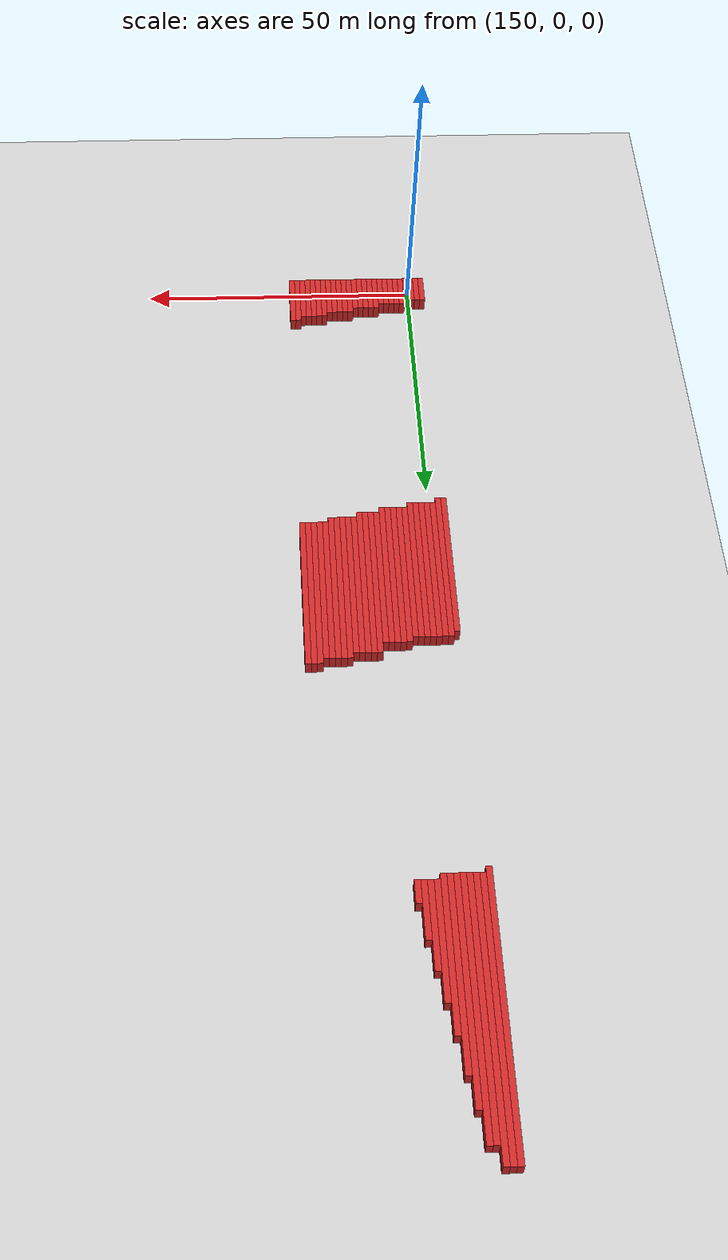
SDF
<sdf version="1.4">
 <world name="1_wall">
  <model name="ground_plane">
   <static>1</static>
   <link name="link">
    <collision name="collision">
     <geometry><plane><normal>0 0 1</normal><size>1000 1000</size></plane></geometry>
     <surface><friction><ode><mu>100</mu><mu2>50</mu2></ode></friction></surface>
    </collision>
    <visual name="visual">
     <cast_shadows>0</cast_shadows>
     <geometry><plane><normal>0 0 1</normal><size>10000 10000</size></plane></geometry>
     <material>
      <script><uri>file://media/materials/scripts/gazebo.material</uri><name>Gazebo/Grey</name></script>
     </material>
    </visual>
    <velocity_decay><linear>0</linear><angular>0</angular></velocity_decay>
   </link>
  </model>
  <model name="Wall_256">
   <static>1</static>
   <link name="Wall_256">
    <collision name="Wall_Collision_256">
     <geometry><box><size>46.0 1.0 2.5</size></box></geometry>
     <pose>0 0 1.25 0 -0 0</pose>
    </collision>
    <visual name="Wall_Visual_256">
     <pose>0 0 1.25 0 -0 0</pose>
     <geometry><box><size>46.0 1.0 2.5</size></box></geometry>
     <material>
      <script><uri>file://media/materials/scripts/gazebo.material</uri><name>Gazebo/Red</name></script>
     </material>
    </visual>
    <velocity_decay><linear>0</linear><angular>0</angular></velocity_decay>
    <pose>146.5 150.0 0 0 0 1.5707963267948966</pose>
   </link>
  </model>
  <model name="Wall_257">
   <static>1</static>
   <link name="Wall_257">
    <collision name="Wall_Collision_257">
     <geometry><box><size>6.0 1.0 2.5</size></box></geometry>
     <pose>0 0 1.25 0 -0 0</pose>
    </collision>
    <visual name="Wall_Visual_257">
     <pose>0 0 1.25 0 -0 0</pose>
     <geometry><box><size>6.0 1.0 2.5</size></box></geometry>
     <material>
      <script><uri>file://media/materials/scripts/gazebo.material</uri><name>Gazebo/Red</name></script>
     </material>
    </visual>
    <velocity_decay><linear>0</linear><angular>0</angular></velocity_decay>
    <pose>147.5 1.0 0 0 0 1.5707963267948966</pose>
   </link>
  </model>
  <model name="Wall_258">
   <static>1</static>
   <link name="Wall_258">
    <collision name="Wall_Collision_258">
     <geometry><box><size>29.0 1.0 2.5</size></box></geometry>
     <pose>0 0 1.25 0 -0 0</pose>
    </collision>
    <visual name="Wall_Visual_258">
     <pose>0 0 1.25 0 -0 0</pose>
     <geometry><box><size>29.0 1.0 2.5</size></box></geometry>
     <material>
      <script><uri>file://media/materials/scripts/gazebo.material</uri><name>Gazebo/Red</name></script>
     </material>
    </visual>
    <velocity_decay><linear>0</linear><angular>0</angular></velocity_decay>
    <pose>147.5 68.5 0 0 0 1.5707963267948966</pose>
   </link>
  </model>
  <model name="Wall_259">
   <static>1</static>
   <link name="Wall_259">
    <collision name="Wall_Collision_259">
     <geometry><box><size>45.0 1.0 2.5</size></box></geometry>
     <pose>0 0 1.25 0 -0 0</pose>
    </collision>
    <visual name="Wall_Visual_259">
     <pose>0 0 1.25 0 -0 0</pose>
     <geometry><box><size>45.0 1.0 2.5</size></box></geometry>
     <material>
      <script><uri>file://media/materials/scripts/gazebo.material</uri><name>Gazebo/Red</name></script>
     </material>
    </visual>
    <velocity_decay><linear>0</linear><angular>0</angular></velocity_decay>
    <pose>147.5 150.5 0 0 0 1.5707963267948966</pose>
   </link>
  </model>
  <model name="Wall_260">
   <static>1</static>
   <link name="Wall_260">
    <collision name="Wall_Collision_260">
     <geometry><box><size>6.0 1.0 2.5</size></box></geometry>
     <pose>0 0 1.25 0 -0 0</pose>
    </collision>
    <visual name="Wall_Visual_260">
     <pose>0 0 1.25 0 -0 0</pose>
     <geometry><box><size>6.0 1.0 2.5</size></box></geometry>
     <material>
      <script><uri>file://media/materials/scripts/gazebo.material</uri><name>Gazebo/Red</name></script>
     </material>
    </visual>
    <velocity_decay><linear>0</linear><angular>0</angular></velocity_decay>
    <pose>148.5 1.0 0 0 0 1.5707963267948966</pose>
   </link>
  </model>
  <model name="Wall_261">
   <static>1</static>
   <link name="Wall_261">
    <collision name="Wall_Collision_261">
     <geometry><box><size>30.0 1.0 2.5</size></box></geometry>
     <pose>0 0 1.25 0 -0 0</pose>
    </collision>
    <visual name="Wall_Visual_261">
     <pose>0 0 1.25 0 -0 0</pose>
     <geometry><box><size>30.0 1.0 2.5</size></box></geometry>
     <material>
      <script><uri>file://media/materials/scripts/gazebo.material</uri><name>Gazebo/Red</name></script>
     </material>
    </visual>
    <velocity_decay><linear>0</linear><angular>0</angular></velocity_decay>
    <pose>148.5 69.0 0 0 0 1.5707963267948966</pose>
   </link>
  </model>
  <model name="Wall_262">
   <static>1</static>
   <link name="Wall_262">
    <collision name="Wall_Collision_262">
     <geometry><box><size>45.0 1.0 2.5</size></box></geometry>
     <pose>0 0 1.25 0 -0 0</pose>
    </collision>
    <visual name="Wall_Visual_262">
     <pose>0 0 1.25 0 -0 0</pose>
     <geometry><box><size>45.0 1.0 2.5</size></box></geometry>
     <material>
      <script><uri>file://media/materials/scripts/gazebo.material</uri><name>Gazebo/Red</name></script>
     </material>
    </visual>
    <velocity_decay><linear>0</linear><angular>0</angular></velocity_decay>
    <pose>148.5 150.5 0 0 0 1.5707963267948966</pose>
   </link>
  </model>
  <model name="Wall_263">
   <static>1</static>
   <link name="Wall_263">
    <collision name="Wall_Collision_263">
     <geometry><box><size>6.0 1.0 2.5</size></box></geometry>
     <pose>0 0 1.25 0 -0 0</pose>
    </collision>
    <visual name="Wall_Visual_263">
     <pose>0 0 1.25 0 -0 0</pose>
     <geometry><box><size>6.0 1.0 2.5</size></box></geometry>
     <material>
      <script><uri>file://media/materials/scripts/gazebo.material</uri><name>Gazebo/Red</name></script>
     </material>
    </visual>
    <velocity_decay><linear>0</linear><angular>0</angular></velocity_decay>
    <pose>149.5 1.0 0 0 0 1.5707963267948966</pose>
   </link>
  </model>
  <model name="Wall_264">
   <static>1</static>
   <link name="Wall_264">
    <collision name="Wall_Collision_264">
     <geometry><box><size>29.0 1.0 2.5</size></box></geometry>
     <pose>0 0 1.25 0 -0 0</pose>
    </collision>
    <visual name="Wall_Visual_264">
     <pose>0 0 1.25 0 -0 0</pose>
     <geometry><box><size>29.0 1.0 2.5</size></box></geometry>
     <material>
      <script><uri>file://media/materials/scripts/gazebo.material</uri><name>Gazebo/Red</name></script>
     </material>
    </visual>
    <velocity_decay><linear>0</linear><angular>0</angular></velocity_decay>
    <pose>149.5 69.5 0 0 0 1.5707963267948966</pose>
   </link>
  </model>
  <model name="Wall_265">
   <static>1</static>
   <link name="Wall_265">
    <collision name="Wall_Collision_265">
     <geometry><box><size>42.0 1.0 2.5</size></box></geometry>
     <pose>0 0 1.25 0 -0 0</pose>
    </collision>
    <visual name="Wall_Visual_265">
     <pose>0 0 1.25 0 -0 0</pose>
     <geometry><box><size>42.0 1.0 2.5</size></box></geometry>
     <material>
      <script><uri>file://media/materials/scripts/gazebo.material</uri><name>Gazebo/Red</name></script>
     </material>
    </visual>
    <velocity_decay><linear>0</linear><angular>0</angular></velocity_decay>
    <pose>149.5 149.0 0 0 0 1.5707963267948966</pose>
   </link>
  </model>
  <model name="Wall_266">
   <static>1</static>
   <link name="Wall_266">
    <collision name="Wall_Collision_266">
     <geometry><box><size>6.0 1.0 2.5</size></box></geometry>
     <pose>0 0 1.25 0 -0 0</pose>
    </collision>
    <visual name="Wall_Visual_266">
     <pose>0 0 1.25 0 -0 0</pose>
     <geometry><box><size>6.0 1.0 2.5</size></box></geometry>
     <material>
      <script><uri>file://media/materials/scripts/gazebo.material</uri><name>Gazebo/Red</name></script>
     </material>
    </visual>
    <velocity_decay><linear>0</linear><angular>0</angular></velocity_decay>
    <pose>150.5 1.0 0 0 0 1.5707963267948966</pose>
   </link>
  </model>
  <model name="Wall_267">
   <static>1</static>
   <link name="Wall_267">
    <collision name="Wall_Collision_267">
     <geometry><box><size>29.0 1.0 2.5</size></box></geometry>
     <pose>0 0 1.25 0 -0 0</pose>
    </collision>
    <visual name="Wall_Visual_267">
     <pose>0 0 1.25 0 -0 0</pose>
     <geometry><box><size>29.0 1.0 2.5</size></box></geometry>
     <material>
      <script><uri>file://media/materials/scripts/gazebo.material</uri><name>Gazebo/Red</name></script>
     </material>
    </visual>
    <velocity_decay><linear>0</linear><angular>0</angular></velocity_decay>
    <pose>150.5 69.5 0 0 0 1.5707963267948966</pose>
   </link>
  </model>
  <model name="Wall_268">
   <static>1</static>
   <link name="Wall_268">
    <collision name="Wall_Collision_268">
     <geometry><box><size>42.0 1.0 2.5</size></box></geometry>
     <pose>0 0 1.25 0 -0 0</pose>
    </collision>
    <visual name="Wall_Visual_268">
     <pose>0 0 1.25 0 -0 0</pose>
     <geometry><box><size>42.0 1.0 2.5</size></box></geometry>
     <material>
      <script><uri>file://media/materials/scripts/gazebo.material</uri><name>Gazebo/Red</name></script>
     </material>
    </visual>
    <velocity_decay><linear>0</linear><angular>0</angular></velocity_decay>
    <pose>150.5 149.0 0 0 0 1.5707963267948966</pose>
   </link>
  </model>
  <model name="Wall_269">
   <static>1</static>
   <link name="Wall_269">
    <collision name="Wall_Collision_269">
     <geometry><box><size>7.0 1.0 2.5</size></box></geometry>
     <pose>0 0 1.25 0 -0 0</pose>
    </collision>
    <visual name="Wall_Visual_269">
     <pose>0 0 1.25 0 -0 0</pose>
     <geometry><box><size>7.0 1.0 2.5</size></box></geometry>
     <material>
      <script><uri>file://media/materials/scripts/gazebo.material</uri><name>Gazebo/Red</name></script>
     </material>
    </visual>
    <velocity_decay><linear>0</linear><angular>0</angular></velocity_decay>
    <pose>151.5 1.5 0 0 0 1.5707963267948966</pose>
   </link>
  </model>
  <model name="Wall_270">
   <static>1</static>
   <link name="Wall_270">
    <collision name="Wall_Collision_270">
     <geometry><box><size>29.0 1.0 2.5</size></box></geometry>
     <pose>0 0 1.25 0 -0 0</pose>
    </collision>
    <visual name="Wall_Visual_270">
     <pose>0 0 1.25 0 -0 0</pose>
     <geometry><box><size>29.0 1.0 2.5</size></box></geometry>
     <material>
      <script><uri>file://media/materials/scripts/gazebo.material</uri><name>Gazebo/Red</name></script>
     </material>
    </visual>
    <velocity_decay><linear>0</linear><angular>0</angular></velocity_decay>
    <pose>151.5 69.5 0 0 0 1.5707963267948966</pose>
   </link>
  </model>
  <model name="Wall_271">
   <static>1</static>
   <link name="Wall_271">
    <collision name="Wall_Collision_271">
     <geometry><box><size>37.0 1.0 2.5</size></box></geometry>
     <pose>0 0 1.25 0 -0 0</pose>
    </collision>
    <visual name="Wall_Visual_271">
     <pose>0 0 1.25 0 -0 0</pose>
     <geometry><box><size>37.0 1.0 2.5</size></box></geometry>
     <material>
      <script><uri>file://media/materials/scripts/gazebo.material</uri><name>Gazebo/Red</name></script>
     </material>
    </visual>
    <velocity_decay><linear>0</linear><angular>0</angular></velocity_decay>
    <pose>151.5 146.5 0 0 0 1.5707963267948966</pose>
   </link>
  </model>
  <model name="Wall_272">
   <static>1</static>
   <link name="Wall_272">
    <collision name="Wall_Collision_272">
     <geometry><box><size>7.0 1.0 2.5</size></box></geometry>
     <pose>0 0 1.25 0 -0 0</pose>
    </collision>
    <visual name="Wall_Visual_272">
     <pose>0 0 1.25 0 -0 0</pose>
     <geometry><box><size>7.0 1.0 2.5</size></box></geometry>
     <material>
      <script><uri>file://media/materials/scripts/gazebo.material</uri><name>Gazebo/Red</name></script>
     </material>
    </visual>
    <velocity_decay><linear>0</linear><angular>0</angular></velocity_decay>
    <pose>152.5 1.5 0 0 0 1.5707963267948966</pose>
   </link>
  </model>
  <model name="Wall_273">
   <static>1</static>
   <link name="Wall_273">
    <collision name="Wall_Collision_273">
     <geometry><box><size>29.0 1.0 2.5</size></box></geometry>
     <pose>0 0 1.25 0 -0 0</pose>
    </collision>
    <visual name="Wall_Visual_273">
     <pose>0 0 1.25 0 -0 0</pose>
     <geometry><box><size>29.0 1.0 2.5</size></box></geometry>
     <material>
      <script><uri>file://media/materials/scripts/gazebo.material</uri><name>Gazebo/Red</name></script>
     </material>
    </visual>
    <velocity_decay><linear>0</linear><angular>0</angular></velocity_decay>
    <pose>152.5 69.5 0 0 0 1.5707963267948966</pose>
   </link>
  </model>
  <model name="Wall_274">
   <static>1</static>
   <link name="Wall_274">
    <collision name="Wall_Collision_274">
     <geometry><box><size>32.0 1.0 2.5</size></box></geometry>
     <pose>0 0 1.25 0 -0 0</pose>
    </collision>
    <visual name="Wall_Visual_274">
     <pose>0 0 1.25 0 -0 0</pose>
     <geometry><box><size>32.0 1.0 2.5</size></box></geometry>
     <material>
      <script><uri>file://media/materials/scripts/gazebo.material</uri><name>Gazebo/Red</name></script>
     </material>
    </visual>
    <velocity_decay><linear>0</linear><angular>0</angular></velocity_decay>
    <pose>152.5 144.0 0 0 0 1.5707963267948966</pose>
   </link>
  </model>
  <model name="Wall_275">
   <static>1</static>
   <link name="Wall_275">
    <collision name="Wall_Collision_275">
     <geometry><box><size>7.0 1.0 2.5</size></box></geometry>
     <pose>0 0 1.25 0 -0 0</pose>
    </collision>
    <visual name="Wall_Visual_275">
     <pose>0 0 1.25 0 -0 0</pose>
     <geometry><box><size>7.0 1.0 2.5</size></box></geometry>
     <material>
      <script><uri>file://media/materials/scripts/gazebo.material</uri><name>Gazebo/Red</name></script>
     </material>
    </visual>
    <velocity_decay><linear>0</linear><angular>0</angular></velocity_decay>
    <pose>153.5 1.5 0 0 0 1.5707963267948966</pose>
   </link>
  </model>
  <model name="Wall_276">
   <static>1</static>
   <link name="Wall_276">
    <collision name="Wall_Collision_276">
     <geometry><box><size>29.0 1.0 2.5</size></box></geometry>
     <pose>0 0 1.25 0 -0 0</pose>
    </collision>
    <visual name="Wall_Visual_276">
     <pose>0 0 1.25 0 -0 0</pose>
     <geometry><box><size>29.0 1.0 2.5</size></box></geometry>
     <material>
      <script><uri>file://media/materials/scripts/gazebo.material</uri><name>Gazebo/Red</name></script>
     </material>
    </visual>
    <velocity_decay><linear>0</linear><angular>0</angular></velocity_decay>
    <pose>153.5 69.5 0 0 0 1.5707963267948966</pose>
   </link>
  </model>
  <model name="Wall_277">
   <static>1</static>
   <link name="Wall_277">
    <collision name="Wall_Collision_277">
     <geometry><box><size>26.0 1.0 2.5</size></box></geometry>
     <pose>0 0 1.25 0 -0 0</pose>
    </collision>
    <visual name="Wall_Visual_277">
     <pose>0 0 1.25 0 -0 0</pose>
     <geometry><box><size>26.0 1.0 2.5</size></box></geometry>
     <material>
      <script><uri>file://media/materials/scripts/gazebo.material</uri><name>Gazebo/Red</name></script>
     </material>
    </visual>
    <velocity_decay><linear>0</linear><angular>0</angular></velocity_decay>
    <pose>153.5 141.0 0 0 0 1.5707963267948966</pose>
   </link>
  </model>
  <model name="Wall_278">
   <static>1</static>
   <link name="Wall_278">
    <collision name="Wall_Collision_278">
     <geometry><box><size>7.0 1.0 2.5</size></box></geometry>
     <pose>0 0 1.25 0 -0 0</pose>
    </collision>
    <visual name="Wall_Visual_278">
     <pose>0 0 1.25 0 -0 0</pose>
     <geometry><box><size>7.0 1.0 2.5</size></box></geometry>
     <material>
      <script><uri>file://media/materials/scripts/gazebo.material</uri><name>Gazebo/Red</name></script>
     </material>
    </visual>
    <velocity_decay><linear>0</linear><angular>0</angular></velocity_decay>
    <pose>154.5 1.5 0 0 0 1.5707963267948966</pose>
   </link>
  </model>
  <model name="Wall_279">
   <static>1</static>
   <link name="Wall_279">
    <collision name="Wall_Collision_279">
     <geometry><box><size>28.0 1.0 2.5</size></box></geometry>
     <pose>0 0 1.25 0 -0 0</pose>
    </collision>
    <visual name="Wall_Visual_279">
     <pose>0 0 1.25 0 -0 0</pose>
     <geometry><box><size>28.0 1.0 2.5</size></box></geometry>
     <material>
      <script><uri>file://media/materials/scripts/gazebo.material</uri><name>Gazebo/Red</name></script>
     </material>
    </visual>
    <velocity_decay><linear>0</linear><angular>0</angular></velocity_decay>
    <pose>154.5 70.0 0 0 0 1.5707963267948966</pose>
   </link>
  </model>
  <model name="Wall_280">
   <static>1</static>
   <link name="Wall_280">
    <collision name="Wall_Collision_280">
     <geometry><box><size>20.0 1.0 2.5</size></box></geometry>
     <pose>0 0 1.25 0 -0 0</pose>
    </collision>
    <visual name="Wall_Visual_280">
     <pose>0 0 1.25 0 -0 0</pose>
     <geometry><box><size>20.0 1.0 2.5</size></box></geometry>
     <material>
      <script><uri>file://media/materials/scripts/gazebo.material</uri><name>Gazebo/Red</name></script>
     </material>
    </visual>
    <velocity_decay><linear>0</linear><angular>0</angular></velocity_decay>
    <pose>154.5 139.0 0 0 0 1.5707963267948966</pose>
   </link>
  </model>
  <model name="Wall_281">
   <static>1</static>
   <link name="Wall_281">
    <collision name="Wall_Collision_281">
     <geometry><box><size>7.0 1.0 2.5</size></box></geometry>
     <pose>0 0 1.25 0 -0 0</pose>
    </collision>
    <visual name="Wall_Visual_281">
     <pose>0 0 1.25 0 -0 0</pose>
     <geometry><box><size>7.0 1.0 2.5</size></box></geometry>
     <material>
      <script><uri>file://media/materials/scripts/gazebo.material</uri><name>Gazebo/Red</name></script>
     </material>
    </visual>
    <velocity_decay><linear>0</linear><angular>0</angular></velocity_decay>
    <pose>155.5 1.5 0 0 0 1.5707963267948966</pose>
   </link>
  </model>
  <model name="Wall_282">
   <static>1</static>
   <link name="Wall_282">
    <collision name="Wall_Collision_282">
     <geometry><box><size>29.0 1.0 2.5</size></box></geometry>
     <pose>0 0 1.25 0 -0 0</pose>
    </collision>
    <visual name="Wall_Visual_282">
     <pose>0 0 1.25 0 -0 0</pose>
     <geometry><box><size>29.0 1.0 2.5</size></box></geometry>
     <material>
      <script><uri>file://media/materials/scripts/gazebo.material</uri><name>Gazebo/Red</name></script>
     </material>
    </visual>
    <velocity_decay><linear>0</linear><angular>0</angular></velocity_decay>
    <pose>155.5 70.5 0 0 0 1.5707963267948966</pose>
   </link>
  </model>
  <model name="Wall_283">
   <static>1</static>
   <link name="Wall_283">
    <collision name="Wall_Collision_283">
     <geometry><box><size>15.0 1.0 2.5</size></box></geometry>
     <pose>0 0 1.25 0 -0 0</pose>
    </collision>
    <visual name="Wall_Visual_283">
     <pose>0 0 1.25 0 -0 0</pose>
     <geometry><box><size>15.0 1.0 2.5</size></box></geometry>
     <material>
      <script><uri>file://media/materials/scripts/gazebo.material</uri><name>Gazebo/Red</name></script>
     </material>
    </visual>
    <velocity_decay><linear>0</linear><angular>0</angular></velocity_decay>
    <pose>155.5 136.5 0 0 0 1.5707963267948966</pose>
   </link>
  </model>
  <model name="Wall_284">
   <static>1</static>
   <link name="Wall_284">
    <collision name="Wall_Collision_284">
     <geometry><box><size>8.0 1.0 2.5</size></box></geometry>
     <pose>0 0 1.25 0 -0 0</pose>
    </collision>
    <visual name="Wall_Visual_284">
     <pose>0 0 1.25 0 -0 0</pose>
     <geometry><box><size>8.0 1.0 2.5</size></box></geometry>
     <material>
      <script><uri>file://media/materials/scripts/gazebo.material</uri><name>Gazebo/Red</name></script>
     </material>
    </visual>
    <velocity_decay><linear>0</linear><angular>0</angular></velocity_decay>
    <pose>156.5 2.0 0 0 0 1.5707963267948966</pose>
   </link>
  </model>
  <model name="Wall_285">
   <static>1</static>
   <link name="Wall_285">
    <collision name="Wall_Collision_285">
     <geometry><box><size>29.0 1.0 2.5</size></box></geometry>
     <pose>0 0 1.25 0 -0 0</pose>
    </collision>
    <visual name="Wall_Visual_285">
     <pose>0 0 1.25 0 -0 0</pose>
     <geometry><box><size>29.0 1.0 2.5</size></box></geometry>
     <material>
      <script><uri>file://media/materials/scripts/gazebo.material</uri><name>Gazebo/Red</name></script>
     </material>
    </visual>
    <velocity_decay><linear>0</linear><angular>0</angular></velocity_decay>
    <pose>156.5 70.5 0 0 0 1.5707963267948966</pose>
   </link>
  </model>
  <model name="Wall_286">
   <static>1</static>
   <link name="Wall_286">
    <collision name="Wall_Collision_286">
     <geometry><box><size>10.0 1.0 2.5</size></box></geometry>
     <pose>0 0 1.25 0 -0 0</pose>
    </collision>
    <visual name="Wall_Visual_286">
     <pose>0 0 1.25 0 -0 0</pose>
     <geometry><box><size>10.0 1.0 2.5</size></box></geometry>
     <material>
      <script><uri>file://media/materials/scripts/gazebo.material</uri><name>Gazebo/Red</name></script>
     </material>
    </visual>
    <velocity_decay><linear>0</linear><angular>0</angular></velocity_decay>
    <pose>156.5 134.0 0 0 0 1.5707963267948966</pose>
   </link>
  </model>
  <model name="Wall_287">
   <static>1</static>
   <link name="Wall_287">
    <collision name="Wall_Collision_287">
     <geometry><box><size>8.0 1.0 2.5</size></box></geometry>
     <pose>0 0 1.25 0 -0 0</pose>
    </collision>
    <visual name="Wall_Visual_287">
     <pose>0 0 1.25 0 -0 0</pose>
     <geometry><box><size>8.0 1.0 2.5</size></box></geometry>
     <material>
      <script><uri>file://media/materials/scripts/gazebo.material</uri><name>Gazebo/Red</name></script>
     </material>
    </visual>
    <velocity_decay><linear>0</linear><angular>0</angular></velocity_decay>
    <pose>157.5 2.0 0 0 0 1.5707963267948966</pose>
   </link>
  </model>
  <model name="Wall_288">
   <static>1</static>
   <link name="Wall_288">
    <collision name="Wall_Collision_288">
     <geometry><box><size>29.0 1.0 2.5</size></box></geometry>
     <pose>0 0 1.25 0 -0 0</pose>
    </collision>
    <visual name="Wall_Visual_288">
     <pose>0 0 1.25 0 -0 0</pose>
     <geometry><box><size>29.0 1.0 2.5</size></box></geometry>
     <material>
      <script><uri>file://media/materials/scripts/gazebo.material</uri><name>Gazebo/Red</name></script>
     </material>
    </visual>
    <velocity_decay><linear>0</linear><angular>0</angular></velocity_decay>
    <pose>157.5 70.5 0 0 0 1.5707963267948966</pose>
   </link>
  </model>
  <model name="Wall_289">
   <static>1</static>
   <link name="Wall_289">
    <collision name="Wall_Collision_289">
     <geometry><box><size>4.0 1.0 2.5</size></box></geometry>
     <pose>0 0 1.25 0 -0 0</pose>
    </collision>
    <visual name="Wall_Visual_289">
     <pose>0 0 1.25 0 -0 0</pose>
     <geometry><box><size>4.0 1.0 2.5</size></box></geometry>
     <material>
      <script><uri>file://media/materials/scripts/gazebo.material</uri><name>Gazebo/Red</name></script>
     </material>
    </visual>
    <velocity_decay><linear>0</linear><angular>0</angular></velocity_decay>
    <pose>157.5 131.0 0 0 0 1.5707963267948966</pose>
   </link>
  </model>
  <model name="Wall_290">
   <static>1</static>
   <link name="Wall_290">
    <collision name="Wall_Collision_290">
     <geometry><box><size>8.0 1.0 2.5</size></box></geometry>
     <pose>0 0 1.25 0 -0 0</pose>
    </collision>
    <visual name="Wall_Visual_290">
     <pose>0 0 1.25 0 -0 0</pose>
     <geometry><box><size>8.0 1.0 2.5</size></box></geometry>
     <material>
      <script><uri>file://media/materials/scripts/gazebo.material</uri><name>Gazebo/Red</name></script>
     </material>
    </visual>
    <velocity_decay><linear>0</linear><angular>0</angular></velocity_decay>
    <pose>158.5 2.0 0 0 0 1.5707963267948966</pose>
   </link>
  </model>
  <model name="Wall_291">
   <static>1</static>
   <link name="Wall_291">
    <collision name="Wall_Collision_291">
     <geometry><box><size>29.0 1.0 2.5</size></box></geometry>
     <pose>0 0 1.25 0 -0 0</pose>
    </collision>
    <visual name="Wall_Visual_291">
     <pose>0 0 1.25 0 -0 0</pose>
     <geometry><box><size>29.0 1.0 2.5</size></box></geometry>
     <material>
      <script><uri>file://media/materials/scripts/gazebo.material</uri><name>Gazebo/Red</name></script>
     </material>
    </visual>
    <velocity_decay><linear>0</linear><angular>0</angular></velocity_decay>
    <pose>158.5 70.5 0 0 0 1.5707963267948966</pose>
   </link>
  </model>
  <model name="Wall_292">
   <static>1</static>
   <link name="Wall_292">
    <collision name="Wall_Collision_292">
     <geometry><box><size>8.0 1.0 2.5</size></box></geometry>
     <pose>0 0 1.25 0 -0 0</pose>
    </collision>
    <visual name="Wall_Visual_292">
     <pose>0 0 1.25 0 -0 0</pose>
     <geometry><box><size>8.0 1.0 2.5</size></box></geometry>
     <material>
      <script><uri>file://media/materials/scripts/gazebo.material</uri><name>Gazebo/Red</name></script>
     </material>
    </visual>
    <velocity_decay><linear>0</linear><angular>0</angular></velocity_decay>
    <pose>159.5 2.0 0 0 0 1.5707963267948966</pose>
   </link>
  </model>
  <model name="Wall_293">
   <static>1</static>
   <link name="Wall_293">
    <collision name="Wall_Collision_293">
     <geometry><box><size>28.0 1.0 2.5</size></box></geometry>
     <pose>0 0 1.25 0 -0 0</pose>
    </collision>
    <visual name="Wall_Visual_293">
     <pose>0 0 1.25 0 -0 0</pose>
     <geometry><box><size>28.0 1.0 2.5</size></box></geometry>
     <material>
      <script><uri>file://media/materials/scripts/gazebo.material</uri><name>Gazebo/Red</name></script>
     </material>
    </visual>
    <velocity_decay><linear>0</linear><angular>0</angular></velocity_decay>
    <pose>159.5 71.0 0 0 0 1.5707963267948966</pose>
   </link>
  </model>
  <model name="Wall_294">
   <static>1</static>
   <link name="Wall_294">
    <collision name="Wall_Collision_294">
     <geometry><box><size>8.0 1.0 2.5</size></box></geometry>
     <pose>0 0 1.25 0 -0 0</pose>
    </collision>
    <visual name="Wall_Visual_294">
     <pose>0 0 1.25 0 -0 0</pose>
     <geometry><box><size>8.0 1.0 2.5</size></box></geometry>
     <material>
      <script><uri>file://media/materials/scripts/gazebo.material</uri><name>Gazebo/Red</name></script>
     </material>
    </visual>
    <velocity_decay><linear>0</linear><angular>0</angular></velocity_decay>
    <pose>160.5 2.0 0 0 0 1.5707963267948966</pose>
   </link>
  </model>
  <model name="Wall_295">
   <static>1</static>
   <link name="Wall_295">
    <collision name="Wall_Collision_295">
     <geometry><box><size>30.0 1.0 2.5</size></box></geometry>
     <pose>0 0 1.25 0 -0 0</pose>
    </collision>
    <visual name="Wall_Visual_295">
     <pose>0 0 1.25 0 -0 0</pose>
     <geometry><box><size>30.0 1.0 2.5</size></box></geometry>
     <material>
      <script><uri>file://media/materials/scripts/gazebo.material</uri><name>Gazebo/Red</name></script>
     </material>
    </visual>
    <velocity_decay><linear>0</linear><angular>0</angular></velocity_decay>
    <pose>160.5 72.0 0 0 0 1.5707963267948966</pose>
   </link>
  </model>
  <model name="Wall_296">
   <static>1</static>
   <link name="Wall_296">
    <collision name="Wall_Collision_296">
     <geometry><box><size>9.0 1.0 2.5</size></box></geometry>
     <pose>0 0 1.25 0 -0 0</pose>
    </collision>
    <visual name="Wall_Visual_296">
     <pose>0 0 1.25 0 -0 0</pose>
     <geometry><box><size>9.0 1.0 2.5</size></box></geometry>
     <material>
      <script><uri>file://media/materials/scripts/gazebo.material</uri><name>Gazebo/Red</name></script>
     </material>
    </visual>
    <velocity_decay><linear>0</linear><angular>0</angular></velocity_decay>
    <pose>161.5 2.5 0 0 0 1.5707963267948966</pose>
   </link>
  </model>
  <model name="Wall_297">
   <static>1</static>
   <link name="Wall_297">
    <collision name="Wall_Collision_297">
     <geometry><box><size>30.0 1.0 2.5</size></box></geometry>
     <pose>0 0 1.25 0 -0 0</pose>
    </collision>
    <visual name="Wall_Visual_297">
     <pose>0 0 1.25 0 -0 0</pose>
     <geometry><box><size>30.0 1.0 2.5</size></box></geometry>
     <material>
      <script><uri>file://media/materials/scripts/gazebo.material</uri><name>Gazebo/Red</name></script>
     </material>
    </visual>
    <velocity_decay><linear>0</linear><angular>0</angular></velocity_decay>
    <pose>161.5 72.0 0 0 0 1.5707963267948966</pose>
   </link>
  </model>
  <model name="Wall_298">
   <static>1</static>
   <link name="Wall_298">
    <collision name="Wall_Collision_298">
     <geometry><box><size>9.0 1.0 2.5</size></box></geometry>
     <pose>0 0 1.25 0 -0 0</pose>
    </collision>
    <visual name="Wall_Visual_298">
     <pose>0 0 1.25 0 -0 0</pose>
     <geometry><box><size>9.0 1.0 2.5</size></box></geometry>
     <material>
      <script><uri>file://media/materials/scripts/gazebo.material</uri><name>Gazebo/Red</name></script>
     </material>
    </visual>
    <velocity_decay><linear>0</linear><angular>0</angular></velocity_decay>
    <pose>162.5 2.5 0 0 0 1.5707963267948966</pose>
   </link>
  </model>
  <model name="Wall_299">
   <static>1</static>
   <link name="Wall_299">
    <collision name="Wall_Collision_299">
     <geometry><box><size>30.0 1.0 2.5</size></box></geometry>
     <pose>0 0 1.25 0 -0 0</pose>
    </collision>
    <visual name="Wall_Visual_299">
     <pose>0 0 1.25 0 -0 0</pose>
     <geometry><box><size>30.0 1.0 2.5</size></box></geometry>
     <material>
      <script><uri>file://media/materials/scripts/gazebo.material</uri><name>Gazebo/Red</name></script>
     </material>
    </visual>
    <velocity_decay><linear>0</linear><angular>0</angular></velocity_decay>
    <pose>162.5 72.0 0 0 0 1.5707963267948966</pose>
   </link>
  </model>
  <model name="Wall_300">
   <static>1</static>
   <link name="Wall_300">
    <collision name="Wall_Collision_300">
     <geometry><box><size>9.0 1.0 2.5</size></box></geometry>
     <pose>0 0 1.25 0 -0 0</pose>
    </collision>
    <visual name="Wall_Visual_300">
     <pose>0 0 1.25 0 -0 0</pose>
     <geometry><box><size>9.0 1.0 2.5</size></box></geometry>
     <material>
      <script><uri>file://media/materials/scripts/gazebo.material</uri><name>Gazebo/Red</name></script>
     </material>
    </visual>
    <velocity_decay><linear>0</linear><angular>0</angular></velocity_decay>
    <pose>163.5 2.5 0 0 0 1.5707963267948966</pose>
   </link>
  </model>
  <model name="Wall_301">
   <static>1</static>
   <link name="Wall_301">
    <collision name="Wall_Collision_301">
     <geometry><box><size>29.0 1.0 2.5</size></box></geometry>
     <pose>0 0 1.25 0 -0 0</pose>
    </collision>
    <visual name="Wall_Visual_301">
     <pose>0 0 1.25 0 -0 0</pose>
     <geometry><box><size>29.0 1.0 2.5</size></box></geometry>
     <material>
      <script><uri>file://media/materials/scripts/gazebo.material</uri><name>Gazebo/Red</name></script>
     </material>
    </visual>
    <velocity_decay><linear>0</linear><angular>0</angular></velocity_decay>
    <pose>163.5 72.5 0 0 0 1.5707963267948966</pose>
   </link>
  </model>
  <model name="Wall_302">
   <static>1</static>
   <link name="Wall_302">
    <collision name="Wall_Collision_302">
     <geometry><box><size>9.0 1.0 2.5</size></box></geometry>
     <pose>0 0 1.25 0 -0 0</pose>
    </collision>
    <visual name="Wall_Visual_302">
     <pose>0 0 1.25 0 -0 0</pose>
     <geometry><box><size>9.0 1.0 2.5</size></box></geometry>
     <material>
      <script><uri>file://media/materials/scripts/gazebo.material</uri><name>Gazebo/Red</name></script>
     </material>
    </visual>
    <velocity_decay><linear>0</linear><angular>0</angular></velocity_decay>
    <pose>164.5 2.5 0 0 0 1.5707963267948966</pose>
   </link>
  </model>
  <model name="Wall_303">
   <static>1</static>
   <link name="Wall_303">
    <collision name="Wall_Collision_303">
     <geometry><box><size>29.0 1.0 2.5</size></box></geometry>
     <pose>0 0 1.25 0 -0 0</pose>
    </collision>
    <visual name="Wall_Visual_303">
     <pose>0 0 1.25 0 -0 0</pose>
     <geometry><box><size>29.0 1.0 2.5</size></box></geometry>
     <material>
      <script><uri>file://media/materials/scripts/gazebo.material</uri><name>Gazebo/Red</name></script>
     </material>
    </visual>
    <velocity_decay><linear>0</linear><angular>0</angular></velocity_decay>
    <pose>164.5 72.5 0 0 0 1.5707963267948966</pose>
   </link>
  </model>
  <model name="Wall_304">
   <static>1</static>
   <link name="Wall_304">
    <collision name="Wall_Collision_304">
     <geometry><box><size>9.0 1.0 2.5</size></box></geometry>
     <pose>0 0 1.25 0 -0 0</pose>
    </collision>
    <visual name="Wall_Visual_304">
     <pose>0 0 1.25 0 -0 0</pose>
     <geometry><box><size>9.0 1.0 2.5</size></box></geometry>
     <material>
      <script><uri>file://media/materials/scripts/gazebo.material</uri><name>Gazebo/Red</name></script>
     </material>
    </visual>
    <velocity_decay><linear>0</linear><angular>0</angular></velocity_decay>
    <pose>165.5 2.5 0 0 0 1.5707963267948966</pose>
   </link>
  </model>
  <model name="Wall_305">
   <static>1</static>
   <link name="Wall_305">
    <collision name="Wall_Collision_305">
     <geometry><box><size>30.0 1.0 2.5</size></box></geometry>
     <pose>0 0 1.25 0 -0 0</pose>
    </collision>
    <visual name="Wall_Visual_305">
     <pose>0 0 1.25 0 -0 0</pose>
     <geometry><box><size>30.0 1.0 2.5</size></box></geometry>
     <material>
      <script><uri>file://media/materials/scripts/gazebo.material</uri><name>Gazebo/Red</name></script>
     </material>
    </visual>
    <velocity_decay><linear>0</linear><angular>0</angular></velocity_decay>
    <pose>165.5 73.0 0 0 0 1.5707963267948966</pose>
   </link>
  </model>
  <model name="Wall_306">
   <static>1</static>
   <link name="Wall_306">
    <collision name="Wall_Collision_306">
     <geometry><box><size>10.0 1.0 2.5</size></box></geometry>
     <pose>0 0 1.25 0 -0 0</pose>
    </collision>
    <visual name="Wall_Visual_306">
     <pose>0 0 1.25 0 -0 0</pose>
     <geometry><box><size>10.0 1.0 2.5</size></box></geometry>
     <material>
      <script><uri>file://media/materials/scripts/gazebo.material</uri><name>Gazebo/Red</name></script>
     </material>
    </visual>
    <velocity_decay><linear>0</linear><angular>0</angular></velocity_decay>
    <pose>166.5 3.0 0 0 0 1.5707963267948966</pose>
   </link>
  </model>
  <model name="Wall_307">
   <static>1</static>
   <link name="Wall_307">
    <collision name="Wall_Collision_307">
     <geometry><box><size>30.0 1.0 2.5</size></box></geometry>
     <pose>0 0 1.25 0 -0 0</pose>
    </collision>
    <visual name="Wall_Visual_307">
     <pose>0 0 1.25 0 -0 0</pose>
     <geometry><box><size>30.0 1.0 2.5</size></box></geometry>
     <material>
      <script><uri>file://media/materials/scripts/gazebo.material</uri><name>Gazebo/Red</name></script>
     </material>
    </visual>
    <velocity_decay><linear>0</linear><angular>0</angular></velocity_decay>
    <pose>166.5 73.0 0 0 0 1.5707963267948966</pose>
   </link>
  </model>
  <model name="Wall_308">
   <static>1</static>
   <link name="Wall_308">
    <collision name="Wall_Collision_308">
     <geometry><box><size>10.0 1.0 2.5</size></box></geometry>
     <pose>0 0 1.25 0 -0 0</pose>
    </collision>
    <visual name="Wall_Visual_308">
     <pose>0 0 1.25 0 -0 0</pose>
     <geometry><box><size>10.0 1.0 2.5</size></box></geometry>
     <material>
      <script><uri>file://media/materials/scripts/gazebo.material</uri><name>Gazebo/Red</name></script>
     </material>
    </visual>
    <velocity_decay><linear>0</linear><angular>0</angular></velocity_decay>
    <pose>167.5 3.0 0 0 0 1.5707963267948966</pose>
   </link>
  </model>
  <model name="Wall_309">
   <static>1</static>
   <link name="Wall_309">
    <collision name="Wall_Collision_309">
     <geometry><box><size>30.0 1.0 2.5</size></box></geometry>
     <pose>0 0 1.25 0 -0 0</pose>
    </collision>
    <visual name="Wall_Visual_309">
     <pose>0 0 1.25 0 -0 0</pose>
     <geometry><box><size>30.0 1.0 2.5</size></box></geometry>
     <material>
      <script><uri>file://media/materials/scripts/gazebo.material</uri><name>Gazebo/Red</name></script>
     </material>
    </visual>
    <velocity_decay><linear>0</linear><angular>0</angular></velocity_decay>
    <pose>167.5 73.0 0 0 0 1.5707963267948966</pose>
   </link>
  </model>
  <model name="Wall_310">
   <static>1</static>
   <link name="Wall_310">
    <collision name="Wall_Collision_310">
     <geometry><box><size>10.0 1.0 2.5</size></box></geometry>
     <pose>0 0 1.25 0 -0 0</pose>
    </collision>
    <visual name="Wall_Visual_310">
     <pose>0 0 1.25 0 -0 0</pose>
     <geometry><box><size>10.0 1.0 2.5</size></box></geometry>
     <material>
      <script><uri>file://media/materials/scripts/gazebo.material</uri><name>Gazebo/Red</name></script>
     </material>
    </visual>
    <velocity_decay><linear>0</linear><angular>0</angular></velocity_decay>
    <pose>168.5 3.0 0 0 0 1.5707963267948966</pose>
   </link>
  </model>
  <model name="Wall_311">
   <static>1</static>
   <link name="Wall_311">
    <collision name="Wall_Collision_311">
     <geometry><box><size>29.0 1.0 2.5</size></box></geometry>
     <pose>0 0 1.25 0 -0 0</pose>
    </collision>
    <visual name="Wall_Visual_311">
     <pose>0 0 1.25 0 -0 0</pose>
     <geometry><box><size>29.0 1.0 2.5</size></box></geometry>
     <material>
      <script><uri>file://media/materials/scripts/gazebo.material</uri><name>Gazebo/Red</name></script>
     </material>
    </visual>
    <velocity_decay><linear>0</linear><angular>0</angular></velocity_decay>
    <pose>168.5 73.5 0 0 0 1.5707963267948966</pose>
   </link>
  </model>
  <model name="Wall_312">
   <static>1</static>
   <link name="Wall_312">
    <collision name="Wall_Collision_312">
     <geometry><box><size>10.0 1.0 2.5</size></box></geometry>
     <pose>0 0 1.25 0 -0 0</pose>
    </collision>
    <visual name="Wall_Visual_312">
     <pose>0 0 1.25 0 -0 0</pose>
     <geometry><box><size>10.0 1.0 2.5</size></box></geometry>
     <material>
      <script><uri>file://media/materials/scripts/gazebo.material</uri><name>Gazebo/Red</name></script>
     </material>
    </visual>
    <velocity_decay><linear>0</linear><angular>0</angular></velocity_decay>
    <pose>169.5 3.0 0 0 0 1.5707963267948966</pose>
   </link>
  </model>
  <model name="Wall_313">
   <static>1</static>
   <link name="Wall_313">
    <collision name="Wall_Collision_313">
     <geometry><box><size>29.0 1.0 2.5</size></box></geometry>
     <pose>0 0 1.25 0 -0 0</pose>
    </collision>
    <visual name="Wall_Visual_313">
     <pose>0 0 1.25 0 -0 0</pose>
     <geometry><box><size>29.0 1.0 2.5</size></box></geometry>
     <material>
      <script><uri>file://media/materials/scripts/gazebo.material</uri><name>Gazebo/Red</name></script>
     </material>
    </visual>
    <velocity_decay><linear>0</linear><angular>0</angular></velocity_decay>
    <pose>169.5 73.5 0 0 0 1.5707963267948966</pose>
   </link>
  </model>
  <model name="Wall_314">
   <static>1</static>
   <link name="Wall_314">
    <collision name="Wall_Collision_314">
     <geometry><box><size>10.0 1.0 2.5</size></box></geometry>
     <pose>0 0 1.25 0 -0 0</pose>
    </collision>
    <visual name="Wall_Visual_314">
     <pose>0 0 1.25 0 -0 0</pose>
     <geometry><box><size>10.0 1.0 2.5</size></box></geometry>
     <material>
      <script><uri>file://media/materials/scripts/gazebo.material</uri><name>Gazebo/Red</name></script>
     </material>
    </visual>
    <velocity_decay><linear>0</linear><angular>0</angular></velocity_decay>
    <pose>170.5 3.0 0 0 0 1.5707963267948966</pose>
   </link>
  </model>
  <model name="Wall_315">
   <static>1</static>
   <link name="Wall_315">
    <collision name="Wall_Collision_315">
     <geometry><box><size>30.0 1.0 2.5</size></box></geometry>
     <pose>0 0 1.25 0 -0 0</pose>
    </collision>
    <visual name="Wall_Visual_315">
     <pose>0 0 1.25 0 -0 0</pose>
     <geometry><box><size>30.0 1.0 2.5</size></box></geometry>
     <material>
      <script><uri>file://media/materials/scripts/gazebo.material</uri><name>Gazebo/Red</name></script>
     </material>
    </visual>
    <velocity_decay><linear>0</linear><angular>0</angular></velocity_decay>
    <pose>170.5 74.0 0 0 0 1.5707963267948966</pose>
   </link>
  </model>
  <model name="Wall_316">
   <static>1</static>
   <link name="Wall_316">
    <collision name="Wall_Collision_316">
     <geometry><box><size>11.0 1.0 2.5</size></box></geometry>
     <pose>0 0 1.25 0 -0 0</pose>
    </collision>
    <visual name="Wall_Visual_316">
     <pose>0 0 1.25 0 -0 0</pose>
     <geometry><box><size>11.0 1.0 2.5</size></box></geometry>
     <material>
      <script><uri>file://media/materials/scripts/gazebo.material</uri><name>Gazebo/Red</name></script>
     </material>
    </visual>
    <velocity_decay><linear>0</linear><angular>0</angular></velocity_decay>
    <pose>171.5 3.5 0 0 0 1.5707963267948966</pose>
   </link>
  </model>
  <model name="Wall_317">
   <static>1</static>
   <link name="Wall_317">
    <collision name="Wall_Collision_317">
     <geometry><box><size>30.0 1.0 2.5</size></box></geometry>
     <pose>0 0 1.25 0 -0 0</pose>
    </collision>
    <visual name="Wall_Visual_317">
     <pose>0 0 1.25 0 -0 0</pose>
     <geometry><box><size>30.0 1.0 2.5</size></box></geometry>
     <material>
      <script><uri>file://media/materials/scripts/gazebo.material</uri><name>Gazebo/Red</name></script>
     </material>
    </visual>
    <velocity_decay><linear>0</linear><angular>0</angular></velocity_decay>
    <pose>171.5 74.0 0 0 0 1.5707963267948966</pose>
   </link>
  </model>
  <model name="Wall_318">
   <static>1</static>
   <link name="Wall_318">
    <collision name="Wall_Collision_318">
     <geometry><box><size>11.0 1.0 2.5</size></box></geometry>
     <pose>0 0 1.25 0 -0 0</pose>
    </collision>
    <visual name="Wall_Visual_318">
     <pose>0 0 1.25 0 -0 0</pose>
     <geometry><box><size>11.0 1.0 2.5</size></box></geometry>
     <material>
      <script><uri>file://media/materials/scripts/gazebo.material</uri><name>Gazebo/Red</name></script>
     </material>
    </visual>
    <velocity_decay><linear>0</linear><angular>0</angular></velocity_decay>
    <pose>172.5 3.5 0 0 0 1.5707963267948966</pose>
   </link>
  </model>
  <model name="Wall_319">
   <static>1</static>
   <link name="Wall_319">
    <collision name="Wall_Collision_319">
     <geometry><box><size>30.0 1.0 2.5</size></box></geometry>
     <pose>0 0 1.25 0 -0 0</pose>
    </collision>
    <visual name="Wall_Visual_319">
     <pose>0 0 1.25 0 -0 0</pose>
     <geometry><box><size>30.0 1.0 2.5</size></box></geometry>
     <material>
      <script><uri>file://media/materials/scripts/gazebo.material</uri><name>Gazebo/Red</name></script>
     </material>
    </visual>
    <velocity_decay><linear>0</linear><angular>0</angular></velocity_decay>
    <pose>172.5 74.0 0 0 0 1.5707963267948966</pose>
   </link>
  </model>
 </world>
</sdf>
